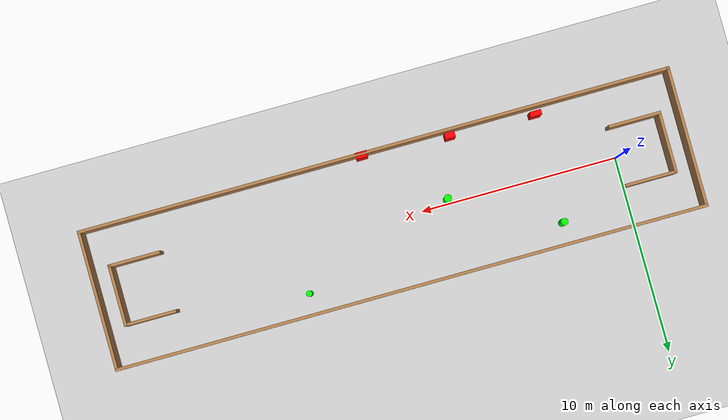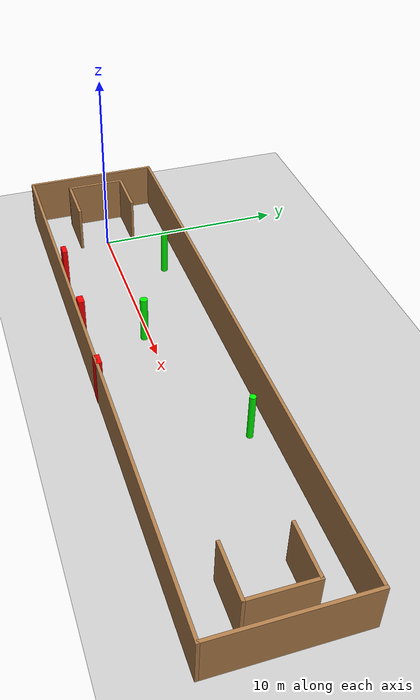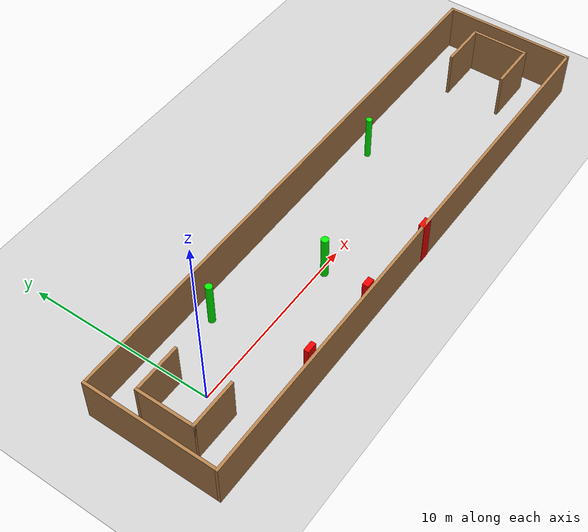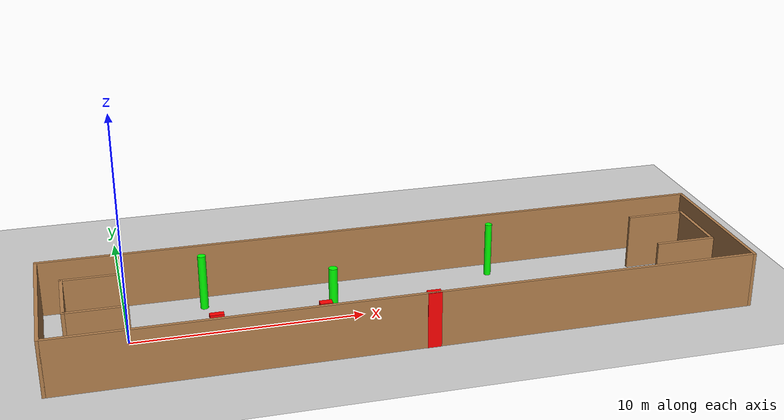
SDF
<sdf version="1.7">
 <world name="default">
  <light name="sun" type="directional">
   <pose>0 0 10 0 -0 0</pose>
   <diffuse>0.8 0.8 0.8 1</diffuse>
   <specular>0.2 0.2 0.2 1</specular>
   <attenuation>
    <range>1000</range>
    <constant>0.9</constant>
    <linear>0.01</linear>
    <quadratic>0.001</quadratic>
   </attenuation>
   <direction>-0.5 0.1 -0.9</direction>
   <spot><inner_angle>0</inner_angle><outer_angle>0</outer_angle><falloff>0</falloff></spot>
  </light>
  <model name="ground_plane">
   <static>1</static>
   <link name="link">
    <collision name="collision">
     <geometry><plane><normal>0 0 1</normal><size>100 100</size></plane></geometry>
     <surface>
      <contact><collide_bitmask>65535</collide_bitmask></contact>
      <friction><ode><mu>100</mu><mu2>50</mu2></ode></friction>
     </surface>
    </collision>
    <visual name="visual">
     <cast_shadows>0</cast_shadows>
     <geometry><plane><normal>0 0 1</normal><size>100 100</size></plane></geometry>
     <material>
      <script><uri>file://media/materials/scripts/gazebo.material</uri><name>Gazebo/Grey</name></script>
     </material>
    </visual>
   </link>
  </model>
  <gravity>0 0 -9.8</gravity>
  <magnetic_field>6e-06 2.3e-05 -4.2e-05</magnetic_field>
  <atmosphere type="adiabatic"/>
  <physics type="ode">
   <max_step_size>0.001</max_step_size>
   <real_time_factor>1</real_time_factor>
   <real_time_update_rate>1000</real_time_update_rate>
  </physics>
  <scene><ambient>0.4 0.4 0.4 1</ambient><background>0.7 0.7 0.7 1</background><shadows>1</shadows></scene>
  <spherical_coordinates>
   <surface_model>EARTH_WGS84</surface_model>
   <latitude_deg>0</latitude_deg>
   <longitude_deg>0</longitude_deg>
   <elevation>0</elevation>
   <heading_deg>0</heading_deg>
  </spherical_coordinates>
  <model name="my_base_walls">
   <link name="Wall_0">
    <collision name="Wall_0_Collision">
     <geometry><box><size>7.15 0.15 2.5</size></box></geometry>
     <pose>0 0 1.25 0 -0 0</pose>
    </collision>
    <visual name="Wall_0_Visual">
     <pose>0 0 1.25 0 -0 0</pose>
     <geometry><box><size>7.15 0.15 2.5</size></box></geometry>
     <material>
      <script><uri>file://media/materials/scripts/gazebo.material</uri><name>Gazebo/Wood</name></script>
      <ambient>1 1 1 1</ambient>
     </material>
     <meta><layer>0</layer></meta>
    </visual>
    <pose>-15 0 0 0 -0 1.5708</pose>
   </link>
   <link name="Wall_10">
    <collision name="Wall_10_Collision">
     <geometry><box><size>2.65 0.15 2.5</size></box></geometry>
     <pose>0 0 1.25 0 -0 0</pose>
    </collision>
    <visual name="Wall_10_Visual">
     <pose>0 0 1.25 0 -0 0</pose>
     <geometry><box><size>2.65 0.15 2.5</size></box></geometry>
     <material>
      <script><uri>file://media/materials/scripts/gazebo.material</uri><name>Gazebo/Wood</name></script>
      <ambient>1 1 1 1</ambient>
     </material>
     <meta><layer>0</layer></meta>
    </visual>
    <pose>-12.75 -1.5 0 0 -0 0</pose>
   </link>
   <link name="Wall_12">
    <collision name="Wall_12_Collision">
     <geometry><box><size>2.65 0.15 2.5</size></box></geometry>
     <pose>0 0 1.25 0 -0 0</pose>
    </collision>
    <visual name="Wall_12_Visual">
     <pose>0 0 1.25 0 -0 0</pose>
     <geometry><box><size>2.65 0.15 2.5</size></box></geometry>
     <material>
      <script><uri>file://media/materials/scripts/gazebo.material</uri><name>Gazebo/Wood</name></script>
      <ambient>1 1 1 1</ambient>
     </material>
     <meta><layer>0</layer></meta>
    </visual>
    <pose>-12.75 1.5 0 0 -0 0</pose>
   </link>
   <link name="Wall_14">
    <collision name="Wall_14_Collision">
     <geometry><box><size>3.15 0.15 2.5</size></box></geometry>
     <pose>0 0 1.25 0 -0 0</pose>
    </collision>
    <visual name="Wall_14_Visual">
     <pose>0 0 1.25 0 -0 0</pose>
     <geometry><box><size>3.15 0.15 2.5</size></box></geometry>
     <material>
      <script><uri>file://media/materials/scripts/gazebo.material</uri><name>Gazebo/Wood</name></script>
      <ambient>1 1 1 1</ambient>
     </material>
     <meta><layer>0</layer></meta>
    </visual>
    <pose>14 0 0 0 -0 -1.5708</pose>
   </link>
   <link name="Wall_15">
    <collision name="Wall_15_Collision">
     <geometry><box><size>2.65 0.15 2.5</size></box></geometry>
     <pose>0 0 1.25 0 -0 0</pose>
    </collision>
    <visual name="Wall_15_Visual">
     <pose>0 0 1.25 0 -0 0</pose>
     <geometry><box><size>2.65 0.15 2.5</size></box></geometry>
     <material>
      <script><uri>file://media/materials/scripts/gazebo.material</uri><name>Gazebo/Wood</name></script>
      <ambient>1 1 1 1</ambient>
     </material>
     <meta><layer>0</layer></meta>
    </visual>
    <pose>12.75 -1.5 0 0 -0 3.14159</pose>
   </link>
   <link name="Wall_17">
    <collision name="Wall_17_Collision">
     <geometry><box><size>2.65 0.15 2.5</size></box></geometry>
     <pose>0 0 1.25 0 -0 0</pose>
    </collision>
    <visual name="Wall_17_Visual">
     <pose>0 0 1.25 0 -0 0</pose>
     <geometry><box><size>2.65 0.15 2.5</size></box></geometry>
     <material>
      <script><uri>file://media/materials/scripts/gazebo.material</uri><name>Gazebo/Wood</name></script>
      <ambient>1 1 1 1</ambient>
     </material>
     <meta><layer>0</layer></meta>
    </visual>
    <pose>12.75 1.5 0 0 -0 3.14159</pose>
   </link>
   <link name="Wall_2">
    <collision name="Wall_2_Collision">
     <geometry><box><size>30.15 0.15 2.5</size></box></geometry>
     <pose>0 0 1.25 0 -0 0</pose>
    </collision>
    <visual name="Wall_2_Visual">
     <pose>0 0 1.25 0 -0 0</pose>
     <geometry><box><size>30.15 0.15 2.5</size></box></geometry>
     <material>
      <script><uri>file://media/materials/scripts/gazebo.material</uri><name>Gazebo/Wood</name></script>
      <ambient>1 1 1 1</ambient>
     </material>
     <meta><layer>0</layer></meta>
    </visual>
    <pose>-0 -3.5 0 0 -0 0</pose>
   </link>
   <link name="Wall_4">
    <collision name="Wall_4_Collision">
     <geometry><box><size>30.15 0.15 2.5</size></box></geometry>
     <pose>0 0 1.25 0 -0 0</pose>
    </collision>
    <visual name="Wall_4_Visual">
     <pose>0 0 1.25 0 -0 0</pose>
     <geometry><box><size>30.15 0.15 2.5</size></box></geometry>
     <material>
      <script><uri>file://media/materials/scripts/gazebo.material</uri><name>Gazebo/Wood</name></script>
      <ambient>1 1 1 1</ambient>
     </material>
     <meta><layer>0</layer></meta>
    </visual>
    <pose>-0 3.5 0 0 -0 0</pose>
   </link>
   <link name="Wall_6">
    <collision name="Wall_6_Collision">
     <geometry><box><size>7.15 0.15 2.5</size></box></geometry>
     <pose>0 0 1.25 0 -0 0</pose>
    </collision>
    <visual name="Wall_6_Visual">
     <pose>0 0 1.25 0 -0 0</pose>
     <geometry><box><size>7.15 0.15 2.5</size></box></geometry>
     <material>
      <script><uri>file://media/materials/scripts/gazebo.material</uri><name>Gazebo/Wood</name></script>
      <ambient>1 1 1 1</ambient>
     </material>
     <meta><layer>0</layer></meta>
    </visual>
    <pose>15 0 0 0 -0 -1.5708</pose>
   </link>
   <link name="Wall_9">
    <collision name="Wall_9_Collision">
     <geometry><box><size>3.15 0.15 2.5</size></box></geometry>
     <pose>0 0 1.25 0 -0 0</pose>
    </collision>
    <visual name="Wall_9_Visual">
     <pose>0 0 1.25 0 -0 0</pose>
     <geometry><box><size>3.15 0.15 2.5</size></box></geometry>
     <material>
      <script><uri>file://media/materials/scripts/gazebo.material</uri><name>Gazebo/Wood</name></script>
      <ambient>1 1 1 1</ambient>
     </material>
     <meta><layer>0</layer></meta>
    </visual>
    <pose>-14 0 0 0 -0 -1.5708</pose>
   </link>
   <static>1</static>
   <pose>11.5 0 0 0 -0 0</pose>
  </model>
  <model name="cylinder1">
   <static>1</static>
   <link name="link">
    <inertial>
     <mass>1</mass>
     <inertia><ixx>0.5</ixx><ixy>0</ixy><ixz>0</ixz><iyy>0.5</iyy><iyz>0</iyz><izz>1</izz></inertia>
    </inertial>
    <collision name="collision">
     <geometry><cylinder><radius>0.15507112823113114</radius><length>2.5</length></cylinder></geometry>
    </collision>
    <visual name="visual">
     <geometry><cylinder><radius>0.15507112823113114</radius><length>2.5</length></cylinder></geometry>
     <material>
      <ambient>0 1 0 1</ambient>
      <diffuse>0 1 0 1</diffuse>
      <specular>0.1 0.1 0.1 1</specular>
      <emissive>0 0 0 0</emissive>
     </material>
    </visual>
   </link>
   <pose>16.42526614341019 2.4351160516718835 1.25 0 0 0</pose>
  </model>
  <model name="cylinder2">
   <static>1</static>
   <link name="link">
    <inertial>
     <mass>1</mass>
     <inertia><ixx>0.5</ixx><ixy>0</ixy><ixz>0</ixz><iyy>0.5</iyy><iyz>0</iyz><izz>1</izz></inertia>
    </inertial>
    <collision name="collision">
     <geometry><cylinder><radius>0.17865240732785326</radius><length>2.5</length></cylinder></geometry>
    </collision>
    <visual name="visual">
     <geometry><cylinder><radius>0.17865240732785326</radius><length>2.5</length></cylinder></geometry>
     <material>
      <ambient>0 1 0 1</ambient>
      <diffuse>0 1 0 1</diffuse>
      <specular>0.1 0.1 0.1 1</specular>
      <emissive>0 0 0 0</emissive>
     </material>
    </visual>
   </link>
   <pose>3.417360494373419 2.404496357496507 1.25 0 0 0</pose>
  </model>
  <model name="cylinder3">
   <static>1</static>
   <link name="link">
    <inertial>
     <mass>1</mass>
     <inertia><ixx>0.5</ixx><ixy>0</ixy><ixz>0</ixz><iyy>0.5</iyy><iyz>0</iyz><izz>1</izz></inertia>
    </inertial>
    <collision name="collision">
     <geometry><cylinder><radius>0.19331723294100986</radius><length>2.5</length></cylinder></geometry>
    </collision>
    <visual name="visual">
     <geometry><cylinder><radius>0.19331723294100986</radius><length>2.5</length></cylinder></geometry>
     <material>
      <ambient>0 1 0 1</ambient>
      <diffuse>0 1 0 1</diffuse>
      <specular>0.1 0.1 0.1 1</specular>
      <emissive>0 0 0 0</emissive>
     </material>
    </visual>
   </link>
   <pose>8.623501619865264 -0.24095902752616327 1.25 0 0 0</pose>
  </model>
  <model name="box1">
   <static>1</static>
   <link name="link">
    <inertial>
     <mass>1</mass>
     <inertia><ixx>0.083</ixx><ixy>0</ixy><ixz>0</ixz><iyy>0.083</iyy><iyz>0</iyz><izz>0.083</izz></inertia>
    </inertial>
    <collision name="collision">
     <geometry><box><size>0.5674645622459238 0.2580266740846421 2.5</size></box></geometry>
    </collision>
    <visual name="visual">
     <geometry><box><size>0.5674645622459238 0.2580266740846421 2.5</size></box></geometry>
     <material>
      <ambient>1 0 0 1</ambient>
      <diffuse>1 0 0 1</diffuse>
      <specular>0.1 0.1 0.1 1</specular>
      <emissive>0 0 0 0</emissive>
     </material>
    </visual>
    <sensor name="my_contact" type="contact">
     <contact><collision>box_collision</collision><topic>__default_topic__</topic></contact>
    </sensor>
   </link>
   <pose>3.3463968266883573 -3.100298747678373 1.25 0 0 0</pose>
  </model>
  <model name="box2">
   <static>1</static>
   <link name="link">
    <inertial>
     <mass>1</mass>
     <inertia><ixx>0.083</ixx><ixy>0</ixy><ixz>0</ixz><iyy>0.083</iyy><iyz>0</iyz><izz>0.083</izz></inertia>
    </inertial>
    <collision name="collision">
     <geometry><box><size>0.5935971044874793 0.3161750320508947 2.5</size></box></geometry>
    </collision>
    <visual name="visual">
     <geometry><box><size>0.5935971044874793 0.3161750320508947 2.5</size></box></geometry>
     <material>
      <ambient>1 0 0 1</ambient>
      <diffuse>1 0 0 1</diffuse>
      <specular>0.1 0.1 0.1 1</specular>
      <emissive>0 0 0 0</emissive>
     </material>
    </visual>
    <sensor name="my_contact" type="contact">
     <contact><collision>box_collision</collision><topic>__default_topic__</topic></contact>
    </sensor>
   </link>
   <pose>12.138451422010645 -3.4358346535564293 1.25 0 0 0</pose>
  </model>
  <model name="box3">
   <static>1</static>
   <link name="link">
    <inertial>
     <mass>1</mass>
     <inertia><ixx>0.083</ixx><ixy>0</ixy><ixz>0</ixz><iyy>0.083</iyy><iyz>0</iyz><izz>0.083</izz></inertia>
    </inertial>
    <collision name="collision">
     <geometry><box><size>0.5118460766876021 0.31352239230531187 2.5</size></box></geometry>
    </collision>
    <visual name="visual">
     <geometry><box><size>0.5118460766876021 0.31352239230531187 2.5</size></box></geometry>
     <material>
      <ambient>1 0 0 1</ambient>
      <diffuse>1 0 0 1</diffuse>
      <specular>0.1 0.1 0.1 1</specular>
      <emissive>0 0 0 0</emissive>
     </material>
    </visual>
    <sensor name="my_contact" type="contact">
     <contact><collision>box_collision</collision><topic>__default_topic__</topic></contact>
    </sensor>
   </link>
   <pose>7.695191682681273 -3.206615359442908 1.25 0 0 0</pose>
  </model>
 </world>
</sdf>
